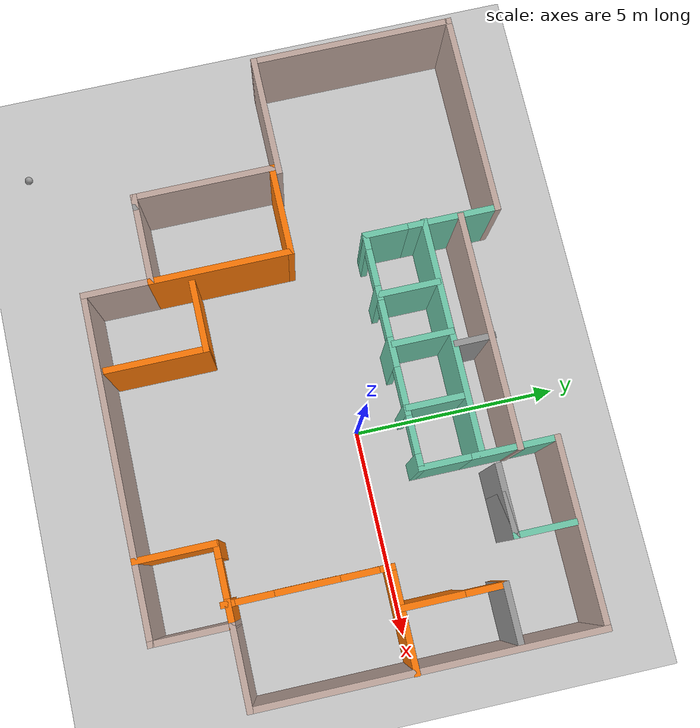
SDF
<sdf version="1.6">
 <world name="default">
  <model name="ground_plane">
   <static>1</static>
   <link name="link">
    <collision name="collision">
     <geometry><plane><normal>0 0 1</normal><size>100 100</size></plane></geometry>
     <surface>
      <contact><collide_bitmask>65535</collide_bitmask></contact>
      <friction><ode><mu>100</mu><mu2>50</mu2></ode></friction>
     </surface>
    </collision>
    <visual name="visual">
     <cast_shadows>0</cast_shadows>
     <geometry><plane><normal>0 0 1</normal><size>100 100</size></plane></geometry>
     <material>
      <script><uri>file://media/materials/scripts/gazebo.material</uri><name>Gazebo/Grey</name></script>
     </material>
    </visual>
   </link>
  </model>
  <model name="Building">
   <pose>-1.69632 -0.68623 0 0 -0 0</pose>
   <link name="Wall_0">
    <collision name="Wall_0_Collision">
     <geometry><box><size>8.25 0.15 2.5</size></box></geometry>
     <pose>0 0 1.25 0 -0 0</pose>
    </collision>
    <visual name="Wall_0_Visual">
     <pose>0 0 1.25 0 -0 0</pose>
     <geometry><box><size>8.25 0.15 2.5</size></box></geometry>
     <material>
      <script><uri>file://media/materials/scripts/gazebo.material</uri><name>Gazebo/Grey</name></script>
      <ambient>0.760784 0.662745 0.627451 1</ambient>
     </material>
     <meta><layer>0</layer></meta>
    </visual>
    <pose>1.4941 -4.975 0 0 -0 0</pose>
   </link>
   <link name="Wall_1">
    <collision name="Wall_1_Collision">
     <geometry><box><size>2 0.15 2.5</size></box></geometry>
     <pose>0 0 1.25 0 -0 0</pose>
    </collision>
    <visual name="Wall_1_Visual">
     <pose>0 0 1.25 0 -0 0</pose>
     <geometry><box><size>2 0.15 2.5</size></box></geometry>
     <material>
      <script><uri>file://media/materials/scripts/gazebo.material</uri><name>Gazebo/Grey</name></script>
      <ambient>0.760784 0.662745 0.627451 1</ambient>
     </material>
     <meta><layer>0</layer></meta>
    </visual>
    <pose>5.5441 -4.05 0 0 -0 1.5708</pose>
   </link>
   <link name="Wall_10">
    <collision name="Wall_10_Collision">
     <geometry><box><size>3 0.15 2.5</size></box></geometry>
     <pose>0 0 1.25 0 -0 0</pose>
    </collision>
    <visual name="Wall_10_Visual">
     <pose>0 0 1.25 0 -0 0</pose>
     <geometry><box><size>3 0.15 2.5</size></box></geometry>
     <material>
      <script><uri>file://media/materials/scripts/gazebo.material</uri><name>Gazebo/Grey</name></script>
      <ambient>0.760784 0.662745 0.627451 1</ambient>
     </material>
     <meta><layer>0</layer></meta>
    </visual>
    <pose>-5.9809 0.125 0 0 -0 0</pose>
   </link>
   <link name="Wall_15">
    <pose>4.6191 -3.125 0 0 -0 3.14159</pose>
    <visual name="Wall_15_Visual_0">
     <pose>-0.661107 0 1.25 0 -0 0</pose>
     <geometry><box><size>0.677786 0.15 2.5</size></box></geometry>
     <material>
      <script><uri>file://media/materials/scripts/gazebo.material</uri><name>Gazebo/Grey</name></script>
      <ambient>0.996078 0.47451 0.0196078 1</ambient>
     </material>
     <meta><layer>0</layer></meta>
    </visual>
    <collision name="Wall_15_Collision_0">
     <geometry><box><size>0.677786 0.15 2.5</size></box></geometry>
     <pose>-0.661107 0 1.25 0 -0 0</pose>
    </collision>
    <visual name="Wall_15_Visual_1">
     <pose>0.788893 0 1.25 0 -0 0</pose>
     <geometry><box><size>0.422214 0.15 2.5</size></box></geometry>
     <material>
      <script><uri>file://media/materials/scripts/gazebo.material</uri><name>Gazebo/Grey</name></script>
      <ambient>0.996078 0.47451 0.0196078 1</ambient>
     </material>
     <meta><layer>0</layer></meta>
    </visual>
    <collision name="Wall_15_Collision_1">
     <geometry><box><size>0.422214 0.15 2.5</size></box></geometry>
     <pose>0.788893 0 1.25 0 -0 0</pose>
    </collision>
    <visual name="Wall_15_Visual_2">
     <pose>0.127786 0 2.25 0 -0 0</pose>
     <geometry><box><size>0.9 0.15 0.5</size></box></geometry>
     <material>
      <script><uri>file://media/materials/scripts/gazebo.material</uri><name>Gazebo/Grey</name></script>
      <ambient>0.996078 0.47451 0.0196078 1</ambient>
     </material>
     <meta><layer>0</layer></meta>
    </visual>
    <collision name="Wall_15_Collision_2">
     <geometry><box><size>0.9 0.15 0.5</size></box></geometry>
     <pose>0.127786 0 2.25 0 -0 0</pose>
    </collision>
   </link>
   <link name="Wall_16">
    <collision name="Wall_16_Collision">
     <geometry><box><size>2 0.15 2.5</size></box></geometry>
     <pose>0 0 1.25 0 -0 0</pose>
    </collision>
    <visual name="Wall_16_Visual">
     <pose>0 0 1.25 0 -0 0</pose>
     <geometry><box><size>2 0.15 2.5</size></box></geometry>
     <material>
      <script><uri>file://media/materials/scripts/gazebo.material</uri><name>Gazebo/Grey</name></script>
      <ambient>0.996078 0.47451 0.0196078 1</ambient>
     </material>
     <meta><layer>0</layer></meta>
    </visual>
    <pose>3.6941 -4.05 0 0 0 -1.5708</pose>
   </link>
   <link name="Wall_18">
    <pose>5.0559 -1.30012 0 0 -0 1.5708</pose>
    <visual name="Wall_18_Visual_0">
     <pose>-1.833 0 1.25 0 -0 0</pose>
     <geometry><box><size>0.334005 0.15 2.5</size></box></geometry>
     <material>
      <script><uri>file://media/materials/scripts/gazebo.material</uri><name>Gazebo/Grey</name></script>
      <ambient>0.996078 0.47451 0.0196078 1</ambient>
     </material>
     <meta><layer>0</layer></meta>
    </visual>
    <collision name="Wall_18_Collision_0">
     <geometry><box><size>0.334005 0.15 2.5</size></box></geometry>
     <pose>-1.833 0 1.25 0 -0 0</pose>
    </collision>
    <visual name="Wall_18_Visual_1">
     <pose>-0.013204 0 1.25 0 -0 0</pose>
     <geometry><box><size>1.50558 0.15 2.5</size></box></geometry>
     <material>
      <script><uri>file://media/materials/scripts/gazebo.material</uri><name>Gazebo/Grey</name></script>
      <ambient>0.996078 0.47451 0.0196078 1</ambient>
     </material>
     <meta><layer>0</layer></meta>
    </visual>
    <collision name="Wall_18_Collision_1">
     <geometry><box><size>1.50558 0.15 2.5</size></box></geometry>
     <pose>-0.013204 0 1.25 0 -0 0</pose>
    </collision>
    <visual name="Wall_18_Visual_2">
     <pose>1.81979 0 1.25 0 -0 0</pose>
     <geometry><box><size>0.360412 0.15 2.5</size></box></geometry>
     <material>
      <script><uri>file://media/materials/scripts/gazebo.material</uri><name>Gazebo/Grey</name></script>
      <ambient>0.996078 0.47451 0.0196078 1</ambient>
     </material>
     <meta><layer>0</layer></meta>
    </visual>
    <collision name="Wall_18_Collision_2">
     <geometry><box><size>0.360412 0.15 2.5</size></box></geometry>
     <pose>1.81979 0 1.25 0 -0 0</pose>
    </collision>
    <visual name="Wall_18_Visual_3">
     <pose>-1.21599 0 2.25 0 -0 0</pose>
     <geometry><box><size>0.9 0.15 0.5</size></box></geometry>
     <material>
      <script><uri>file://media/materials/scripts/gazebo.material</uri><name>Gazebo/Grey</name></script>
      <ambient>0.996078 0.47451 0.0196078 1</ambient>
     </material>
     <meta><layer>0</layer></meta>
    </visual>
    <collision name="Wall_18_Collision_3">
     <geometry><box><size>0.9 0.15 0.5</size></box></geometry>
     <pose>-1.21599 0 2.25 0 -0 0</pose>
    </collision>
    <visual name="Wall_18_Visual_4">
     <pose>1.18959 0 2.25 0 -0 0</pose>
     <geometry><box><size>0.9 0.15 0.5</size></box></geometry>
     <material>
      <script><uri>file://media/materials/scripts/gazebo.material</uri><name>Gazebo/Grey</name></script>
      <ambient>0.996078 0.47451 0.0196078 1</ambient>
     </material>
     <meta><layer>0</layer></meta>
    </visual>
    <collision name="Wall_18_Collision_4">
     <geometry><box><size>0.9 0.15 0.5</size></box></geometry>
     <pose>1.18959 0 2.25 0 -0 0</pose>
    </collision>
   </link>
   <link name="Wall_19">
    <collision name="Wall_19_Collision">
     <geometry><box><size>2.5 0.15 2.5</size></box></geometry>
     <pose>0 0 1.25 0 -0 0</pose>
    </collision>
    <visual name="Wall_19_Visual">
     <pose>0 0 1.25 0 -0 0</pose>
     <geometry><box><size>2.5 0.15 2.5</size></box></geometry>
     <material>
      <script><uri>file://media/materials/scripts/gazebo.material</uri><name>Gazebo/Grey</name></script>
      <ambient>0.996078 0.47451 0.0196078 1</ambient>
     </material>
     <meta><layer>0</layer></meta>
    </visual>
    <pose>6.2309 0.624882 0 0 -0 0</pose>
   </link>
   <link name="Wall_2">
    <collision name="Wall_2_Collision">
     <geometry><box><size>2 0.15 2.5</size></box></geometry>
     <pose>0 0 1.25 0 -0 0</pose>
    </collision>
    <visual name="Wall_2_Visual">
     <pose>0 0 1.25 0 -0 0</pose>
     <geometry><box><size>2 0.15 2.5</size></box></geometry>
     <material>
      <script><uri>file://media/materials/scripts/gazebo.material</uri><name>Gazebo/Grey</name></script>
      <ambient>0.760784 0.662745 0.627451 1</ambient>
     </material>
     <meta><layer>0</layer></meta>
    </visual>
    <pose>6.4691 -3.125 0 0 -0 0</pose>
   </link>
   <link name="Wall_21">
    <pose>5.98112 1.83582 0 0 -0 1.5708</pose>
    <visual name="Wall_21_Visual_0">
     <pose>-0.504732 0 1.25 0 -0 0</pose>
     <geometry><box><size>1.49053 0.15 2.5</size></box></geometry>
     <material>
      <script><uri>file://media/materials/scripts/gazebo.material</uri><name>Gazebo/Grey</name></script>
      <ambient>0.996078 0.47451 0.0196078 1</ambient>
     </material>
     <meta><layer>0</layer></meta>
    </visual>
    <collision name="Wall_21_Collision_0">
     <geometry><box><size>1.49053 0.15 2.5</size></box></geometry>
     <pose>-0.504732 0 1.25 0 -0 0</pose>
    </collision>
    <visual name="Wall_21_Visual_1">
     <pose>1.19527 0 1.25 0 -0 0</pose>
     <geometry><box><size>0.109465 0.15 2.5</size></box></geometry>
     <material>
      <script><uri>file://media/materials/scripts/gazebo.material</uri><name>Gazebo/Grey</name></script>
      <ambient>0.996078 0.47451 0.0196078 1</ambient>
     </material>
     <meta><layer>0</layer></meta>
    </visual>
    <collision name="Wall_21_Collision_1">
     <geometry><box><size>0.109465 0.15 2.5</size></box></geometry>
     <pose>1.19527 0 1.25 0 -0 0</pose>
    </collision>
    <visual name="Wall_21_Visual_2">
     <pose>0.690535 0 2.25 0 -0 0</pose>
     <geometry><box><size>0.9 0.15 0.5</size></box></geometry>
     <material>
      <script><uri>file://media/materials/scripts/gazebo.material</uri><name>Gazebo/Grey</name></script>
      <ambient>0.996078 0.47451 0.0196078 1</ambient>
     </material>
     <meta><layer>0</layer></meta>
    </visual>
    <collision name="Wall_21_Collision_2">
     <geometry><box><size>0.9 0.15 0.5</size></box></geometry>
     <pose>0.690535 0 2.25 0 -0 0</pose>
    </collision>
   </link>
   <link name="Wall_22">
    <collision name="Wall_22_Collision">
     <geometry><box><size>1.5 0.15 2.5</size></box></geometry>
     <pose>0 0 1.25 0 -0 0</pose>
    </collision>
    <visual name="Wall_22_Visual">
     <pose>0 0 1.25 0 -0 0</pose>
     <geometry><box><size>1.5 0.15 2.5</size></box></geometry>
     <material>
      <script><uri>file://media/materials/scripts/gazebo.material</uri><name>Gazebo/Grey</name></script>
      <ambient>1 1 1 1</ambient>
     </material>
     <meta><layer>0</layer></meta>
    </visual>
    <pose>6.65612 3.01082 0 0 -0 0</pose>
   </link>
   <link name="Wall_25">
    <collision name="Wall_25_Collision">
     <geometry><box><size>1.75 0.15 2.5</size></box></geometry>
     <pose>0 0 1.25 0 -0 0</pose>
    </collision>
    <visual name="Wall_25_Visual">
     <pose>0 0 1.25 0 -0 0</pose>
     <geometry><box><size>1.75 0.15 2.5</size></box></geometry>
     <material>
      <script><uri>file://media/materials/scripts/gazebo.material</uri><name>Gazebo/Grey</name></script>
      <ambient>0.760784 0.662745 0.627451 1</ambient>
     </material>
     <meta><layer>0</layer></meta>
    </visual>
    <pose>-2.5559 -4.175 0 0 -0 1.5708</pose>
   </link>
   <link name="Wall_27">
    <collision name="Wall_27_Collision">
     <geometry><box><size>0.15 0.15 2.5</size></box></geometry>
     <pose>0 0 1.25 0 -0 0</pose>
    </collision>
    <visual name="Wall_27_Visual">
     <pose>0 0 1.25 0 -0 0</pose>
     <geometry><box><size>0.15 0.15 2.5</size></box></geometry>
     <material>
      <script><uri>file://media/materials/scripts/gazebo.material</uri><name>Gazebo/Grey</name></script>
      <ambient>1 1 1 1</ambient>
     </material>
     <meta><layer>0</layer></meta>
    </visual>
    <pose>-4.4059 -3.375 0 0 -0 0</pose>
   </link>
   <link name="Wall_28">
    <collision name="Wall_28_Collision">
     <geometry><box><size>0.15 0.15 2.5</size></box></geometry>
     <pose>0 0 1.25 0 -0 0</pose>
    </collision>
    <visual name="Wall_28_Visual">
     <pose>0 0 1.25 0 -0 0</pose>
     <geometry><box><size>0.15 0.15 2.5</size></box></geometry>
     <material>
      <script><uri>file://media/materials/scripts/gazebo.material</uri><name>Gazebo/Grey</name></script>
      <ambient>1 1 1 1</ambient>
     </material>
     <meta><layer>0</layer></meta>
    </visual>
    <pose>-4.4059 -3.375 0 0 -0 0</pose>
   </link>
   <link name="Wall_29">
    <collision name="Wall_29_Collision">
     <geometry><box><size>0.15 0.15 2.5</size></box></geometry>
     <pose>0 0 1.25 0 -0 0</pose>
    </collision>
    <visual name="Wall_29_Visual">
     <pose>0 0 1.25 0 -0 0</pose>
     <geometry><box><size>0.15 0.15 2.5</size></box></geometry>
     <material>
      <script><uri>file://media/materials/scripts/gazebo.material</uri><name>Gazebo/Grey</name></script>
      <ambient>1 1 1 1</ambient>
     </material>
     <meta><layer>0</layer></meta>
    </visual>
    <pose>-4.4059 -3.375 0 0 -0 0</pose>
   </link>
   <link name="Wall_3">
    <collision name="Wall_3_Collision">
     <geometry><box><size>8.25 0.15 2.5</size></box></geometry>
     <pose>0 0 1.25 0 -0 0</pose>
    </collision>
    <visual name="Wall_3_Visual">
     <pose>0 0 1.25 0 -0 0</pose>
     <geometry><box><size>8.25 0.15 2.5</size></box></geometry>
     <material>
      <script><uri>file://media/materials/scripts/gazebo.material</uri><name>Gazebo/Grey</name></script>
      <ambient>0.760784 0.662745 0.627451 1</ambient>
     </material>
     <meta><layer>0</layer></meta>
    </visual>
    <pose>7.3941 0.925 0 0 -0 1.5708</pose>
   </link>
   <link name="Wall_30">
    <collision name="Wall_30_Collision">
     <geometry><box><size>0.15 0.15 2.5</size></box></geometry>
     <pose>0 0 1.25 0 -0 0</pose>
    </collision>
    <visual name="Wall_30_Visual">
     <pose>0 0 1.25 0 -0 0</pose>
     <geometry><box><size>0.15 0.15 2.5</size></box></geometry>
     <material>
      <script><uri>file://media/materials/scripts/gazebo.material</uri><name>Gazebo/Grey</name></script>
      <ambient>1 1 1 1</ambient>
     </material>
     <meta><layer>0</layer></meta>
    </visual>
    <pose>-4.4059 -3.375 0 0 -0 0</pose>
   </link>
   <link name="Wall_33">
    <collision name="Wall_33_Collision">
     <geometry><box><size>2.25 0.15 2.5</size></box></geometry>
     <pose>0 0 1.25 0 -0 0</pose>
    </collision>
    <visual name="Wall_33_Visual">
     <pose>0 0 1.25 0 -0 0</pose>
     <geometry><box><size>2.25 0.15 2.5</size></box></geometry>
     <material>
      <script><uri>file://media/materials/scripts/gazebo.material</uri><name>Gazebo/Grey</name></script>
      <ambient>0.760784 0.662745 0.627451 1</ambient>
     </material>
     <meta><layer>0</layer></meta>
    </visual>
    <pose>-3.6059 -3.375 0 0 -0 3.14159</pose>
   </link>
   <link name="Wall_34">
    <collision name="Wall_34_Collision">
     <geometry><box><size>3.5 0.15 2.5</size></box></geometry>
     <pose>0 0 1.25 0 -0 0</pose>
    </collision>
    <visual name="Wall_34_Visual">
     <pose>0 0 1.25 0 -0 0</pose>
     <geometry><box><size>3.5 0.15 2.5</size></box></geometry>
     <material>
      <script><uri>file://media/materials/scripts/gazebo.material</uri><name>Gazebo/Grey</name></script>
      <ambient>0.760784 0.662745 0.627451 1</ambient>
     </material>
     <meta><layer>0</layer></meta>
    </visual>
    <pose>-4.6559 -1.7 0 0 -0 1.5708</pose>
   </link>
   <link name="Wall_39">
    <collision name="Wall_39_Collision">
     <geometry><box><size>3.5 0.15 2.5</size></box></geometry>
     <pose>0 0 1.25 0 -0 0</pose>
    </collision>
    <visual name="Wall_39_Visual">
     <pose>0 0 1.25 0 -0 0</pose>
     <geometry><box><size>3.5 0.15 2.5</size></box></geometry>
     <material>
      <script><uri>file://media/materials/scripts/gazebo.material</uri><name>Gazebo/Grey</name></script>
      <ambient>0.996078 0.47451 0.0196078 1</ambient>
     </material>
     <meta><layer>0</layer></meta>
    </visual>
    <pose>-2.5559 -1.7 0 0 -0 1.5708</pose>
   </link>
   <link name="Wall_4">
    <collision name="Wall_4_Collision">
     <geometry><box><size>4.5 0.15 2.5</size></box></geometry>
     <pose>0 0 1.25 0 -0 0</pose>
    </collision>
    <visual name="Wall_4_Visual">
     <pose>0 0 1.25 0 -0 0</pose>
     <geometry><box><size>4.5 0.15 2.5</size></box></geometry>
     <material>
      <script><uri>file://media/materials/scripts/gazebo.material</uri><name>Gazebo/Grey</name></script>
      <ambient>0.760784 0.662745 0.627451 1</ambient>
     </material>
     <meta><layer>0</layer></meta>
    </visual>
    <pose>5.2191 4.975 0 0 -0 3.14159</pose>
   </link>
   <link name="Wall_40">
    <collision name="Wall_40_Collision">
     <geometry><box><size>2.25 0.15 2.5</size></box></geometry>
     <pose>0 0 1.25 0 -0 0</pose>
    </collision>
    <visual name="Wall_40_Visual">
     <pose>0 0 1.25 0 -0 0</pose>
     <geometry><box><size>2.25 0.15 2.5</size></box></geometry>
     <material>
      <script><uri>file://media/materials/scripts/gazebo.material</uri><name>Gazebo/Grey</name></script>
      <ambient>0.996078 0.47451 0.0196078 1</ambient>
     </material>
     <meta><layer>0</layer></meta>
    </visual>
    <pose>-3.6059 -0.025 0 0 -0 3.14159</pose>
   </link>
   <link name="Wall_42">
    <collision name="Wall_42_Collision">
     <geometry><box><size>1.75 0.15 2.5</size></box></geometry>
     <pose>0 0 1.25 0 -0 0</pose>
    </collision>
    <visual name="Wall_42_Visual">
     <pose>0 0 1.25 0 -0 0</pose>
     <geometry><box><size>1.75 0.15 2.5</size></box></geometry>
     <material>
      <script><uri>file://media/materials/scripts/gazebo.material</uri><name>Gazebo/Grey</name></script>
      <ambient>0.996078 0.47451 0.0196078 1</ambient>
     </material>
     <meta><layer>0</layer></meta>
    </visual>
    <pose>-1.49964 -2.43868 0 0 -0 0</pose>
   </link>
   <link name="Wall_43">
    <collision name="Wall_43_Collision">
     <geometry><box><size>2.5 0.15 2.5</size></box></geometry>
     <pose>0 0 1.25 0 -0 0</pose>
    </collision>
    <visual name="Wall_43_Visual">
     <pose>0 0 1.25 0 -0 0</pose>
     <geometry><box><size>2.5 0.15 2.5</size></box></geometry>
     <material>
      <script><uri>file://media/materials/scripts/gazebo.material</uri><name>Gazebo/Grey</name></script>
      <ambient>0.996078 0.47451 0.0196078 1</ambient>
     </material>
     <meta><layer>0</layer></meta>
    </visual>
    <pose>-0.699636 -3.61368 0 0 0 -1.5708</pose>
   </link>
   <link name="Wall_45">
    <collision name="Wall_45_Collision">
     <geometry><box><size>1.25 0.15 2.5</size></box></geometry>
     <pose>0 0 1.25 0 -0 0</pose>
    </collision>
    <visual name="Wall_45_Visual">
     <pose>0 0 1.25 0 -0 0</pose>
     <geometry><box><size>1.25 0.15 2.5</size></box></geometry>
     <material>
      <script><uri>file://media/materials/scripts/gazebo.material</uri><name>Gazebo/Grey</name></script>
      <ambient>0.435294 0.796078 0.67451 1</ambient>
     </material>
     <meta><layer>0</layer></meta>
    </visual>
    <pose>-2.5559 2.325 0 0 0 -1.5708</pose>
   </link>
   <link name="Wall_46">
    <pose>0.244104 1.775 0 0 -0 0</pose>
    <visual name="Wall_46_Visual_0">
     <pose>-2.66153 0 1.25 0 -0 0</pose>
     <geometry><box><size>0.42695 0.15 2.5</size></box></geometry>
     <material>
      <script><uri>file://media/materials/scripts/gazebo.material</uri><name>Gazebo/Grey</name></script>
      <ambient>0.435294 0.796078 0.67451 1</ambient>
     </material>
     <meta><layer>0</layer></meta>
    </visual>
    <collision name="Wall_46_Collision_0">
     <geometry><box><size>0.42695 0.15 2.5</size></box></geometry>
     <pose>-2.66153 0 1.25 0 -0 0</pose>
    </collision>
    <visual name="Wall_46_Visual_1">
     <pose>-1.37352 0 1.25 0 -0 0</pose>
     <geometry><box><size>0.349053 0.15 2.5</size></box></geometry>
     <material>
      <script><uri>file://media/materials/scripts/gazebo.material</uri><name>Gazebo/Grey</name></script>
      <ambient>0.435294 0.796078 0.67451 1</ambient>
     </material>
     <meta><layer>0</layer></meta>
    </visual>
    <collision name="Wall_46_Collision_1">
     <geometry><box><size>0.349053 0.15 2.5</size></box></geometry>
     <pose>-1.37352 0 1.25 0 -0 0</pose>
    </collision>
    <visual name="Wall_46_Visual_2">
     <pose>0.060574 0 1.25 0 -0 0</pose>
     <geometry><box><size>0.719143 0.15 2.5</size></box></geometry>
     <material>
      <script><uri>file://media/materials/scripts/gazebo.material</uri><name>Gazebo/Grey</name></script>
      <ambient>0.435294 0.796078 0.67451 1</ambient>
     </material>
     <meta><layer>0</layer></meta>
    </visual>
    <collision name="Wall_46_Collision_2">
     <geometry><box><size>0.719143 0.15 2.5</size></box></geometry>
     <pose>0.060574 0 1.25 0 -0 0</pose>
    </collision>
    <visual name="Wall_46_Visual_3">
     <pose>1.44841 0 1.25 0 -0 0</pose>
     <geometry><box><size>0.25653 0.15 2.5</size></box></geometry>
     <material>
      <script><uri>file://media/materials/scripts/gazebo.material</uri><name>Gazebo/Grey</name></script>
      <ambient>0.435294 0.796078 0.67451 1</ambient>
     </material>
     <meta><layer>0</layer></meta>
    </visual>
    <collision name="Wall_46_Collision_3">
     <geometry><box><size>0.25653 0.15 2.5</size></box></geometry>
     <pose>1.44841 0 1.25 0 -0 0</pose>
    </collision>
    <visual name="Wall_46_Visual_4">
     <pose>2.67584 0 1.25 0 -0 0</pose>
     <geometry><box><size>0.398324 0.15 2.5</size></box></geometry>
     <material>
      <script><uri>file://media/materials/scripts/gazebo.material</uri><name>Gazebo/Grey</name></script>
      <ambient>0.435294 0.796078 0.67451 1</ambient>
     </material>
     <meta><layer>0</layer></meta>
    </visual>
    <collision name="Wall_46_Collision_4">
     <geometry><box><size>0.398324 0.15 2.5</size></box></geometry>
     <pose>2.67584 0 1.25 0 -0 0</pose>
    </collision>
    <visual name="Wall_46_Visual_5">
     <pose>-1.99805 0 2.25 0 -0 0</pose>
     <geometry><box><size>0.9 0.15 0.5</size></box></geometry>
     <material>
      <script><uri>file://media/materials/scripts/gazebo.material</uri><name>Gazebo/Grey</name></script>
      <ambient>0.435294 0.796078 0.67451 1</ambient>
     </material>
     <meta><layer>0</layer></meta>
    </visual>
    <collision name="Wall_46_Collision_5">
     <geometry><box><size>0.9 0.15 0.5</size></box></geometry>
     <pose>-1.99805 0 2.25 0 -0 0</pose>
    </collision>
    <visual name="Wall_46_Visual_6">
     <pose>-0.748997 0 2.25 0 -0 0</pose>
     <geometry><box><size>0.9 0.15 0.5</size></box></geometry>
     <material>
      <script><uri>file://media/materials/scripts/gazebo.material</uri><name>Gazebo/Grey</name></script>
      <ambient>0.435294 0.796078 0.67451 1</ambient>
     </material>
     <meta><layer>0</layer></meta>
    </visual>
    <collision name="Wall_46_Collision_6">
     <geometry><box><size>0.9 0.15 0.5</size></box></geometry>
     <pose>-0.748997 0 2.25 0 -0 0</pose>
    </collision>
    <visual name="Wall_46_Visual_7">
     <pose>0.870145 0 2.25 0 -0 0</pose>
     <geometry><box><size>0.9 0.15 0.5</size></box></geometry>
     <material>
      <script><uri>file://media/materials/scripts/gazebo.material</uri><name>Gazebo/Grey</name></script>
      <ambient>0.435294 0.796078 0.67451 1</ambient>
     </material>
     <meta><layer>0</layer></meta>
    </visual>
    <collision name="Wall_46_Collision_7">
     <geometry><box><size>0.9 0.15 0.5</size></box></geometry>
     <pose>0.870145 0 2.25 0 -0 0</pose>
    </collision>
    <visual name="Wall_46_Visual_8">
     <pose>2.02668 0 2.25 0 -0 0</pose>
     <geometry><box><size>0.9 0.15 0.5</size></box></geometry>
     <material>
      <script><uri>file://media/materials/scripts/gazebo.material</uri><name>Gazebo/Grey</name></script>
      <ambient>0.435294 0.796078 0.67451 1</ambient>
     </material>
     <meta><layer>0</layer></meta>
    </visual>
    <collision name="Wall_46_Collision_8">
     <geometry><box><size>0.9 0.15 0.5</size></box></geometry>
     <pose>2.02668 0 2.25 0 -0 0</pose>
    </collision>
   </link>
   <link name="Wall_47">
    <collision name="Wall_47_Collision">
     <geometry><box><size>1.25 0.15 2.5</size></box></geometry>
     <pose>0 0 1.25 0 -0 0</pose>
    </collision>
    <visual name="Wall_47_Visual">
     <pose>0 0 1.25 0 -0 0</pose>
     <geometry><box><size>1.25 0.15 2.5</size></box></geometry>
     <material>
      <script><uri>file://media/materials/scripts/gazebo.material</uri><name>Gazebo/Grey</name></script>
      <ambient>0.435294 0.796078 0.67451 1</ambient>
     </material>
     <meta><layer>0</layer></meta>
    </visual>
    <pose>3.0441 2.325 0 0 -0 1.5708</pose>
   </link>
   <link name="Wall_49">
    <collision name="Wall_49_Collision">
     <geometry><box><size>5.75 0.15 2.5</size></box></geometry>
     <pose>0 0 1.25 0 -0 0</pose>
    </collision>
    <visual name="Wall_49_Visual">
     <pose>0 0 1.25 0 -0 0</pose>
     <geometry><box><size>5.75 0.15 2.5</size></box></geometry>
     <material>
      <script><uri>file://media/materials/scripts/gazebo.material</uri><name>Gazebo/Grey</name></script>
      <ambient>0.760784 0.662745 0.627451 1</ambient>
     </material>
     <meta><layer>0</layer></meta>
    </visual>
    <pose>0.269058 4.08415 0 0 -0 0</pose>
   </link>
   <link name="Wall_5">
    <collision name="Wall_5_Collision">
     <geometry><box><size>2.25 0.15 2.5</size></box></geometry>
     <pose>0 0 1.25 0 -0 0</pose>
    </collision>
    <visual name="Wall_5_Visual">
     <pose>0 0 1.25 0 -0 0</pose>
     <geometry><box><size>2.25 0.15 2.5</size></box></geometry>
     <material>
      <script><uri>file://media/materials/scripts/gazebo.material</uri><name>Gazebo/Grey</name></script>
      <ambient>0.435294 0.796078 0.67451 1</ambient>
     </material>
     <meta><layer>0</layer></meta>
    </visual>
    <pose>3.0441 3.925 0 0 0 -1.5708</pose>
   </link>
   <link name="Wall_53">
    <collision name="Wall_53_Collision">
     <geometry><box><size>5.75 0.15 2.5</size></box></geometry>
     <pose>0 0 1.25 0 -0 0</pose>
    </collision>
    <visual name="Wall_53_Visual">
     <pose>0 0 1.25 0 -0 0</pose>
     <geometry><box><size>5.75 0.15 2.5</size></box></geometry>
     <material>
      <script><uri>file://media/materials/scripts/gazebo.material</uri><name>Gazebo/Grey</name></script>
      <ambient>0.435294 0.796078 0.67451 1</ambient>
     </material>
     <meta><layer>0</layer></meta>
    </visual>
    <pose>0.222797 3.20519 0 0 -0 0</pose>
   </link>
   <link name="Wall_58">
    <collision name="Wall_58_Collision">
     <geometry><box><size>1 0.15 2.5</size></box></geometry>
     <pose>0 0 1.25 0 -0 0</pose>
    </collision>
    <visual name="Wall_58_Visual">
     <pose>0 0 1.25 0 -0 0</pose>
     <geometry><box><size>1 0.15 2.5</size></box></geometry>
     <material>
      <script><uri>file://media/materials/scripts/gazebo.material</uri><name>Gazebo/Grey</name></script>
      <ambient>1 1 1 1</ambient>
     </material>
     <meta><layer>0</layer></meta>
    </visual>
    <pose>0.425617 3.67936 0 0 0 -1.5708</pose>
   </link>
   <link name="Wall_65">
    <collision name="Wall_65_Collision">
     <geometry><box><size>1.5 0.15 2.5</size></box></geometry>
     <pose>0 0 1.25 0 -0 0</pose>
    </collision>
    <visual name="Wall_65_Visual">
     <pose>0 0 1.25 0 -0 0</pose>
     <geometry><box><size>1.5 0.15 2.5</size></box></geometry>
     <material>
      <script><uri>file://media/materials/scripts/gazebo.material</uri><name>Gazebo/Grey</name></script>
      <ambient>0.435294 0.796078 0.67451 1</ambient>
     </material>
     <meta><layer>0</layer></meta>
    </visual>
    <pose>-1.09526 2.48642 0 0 0 -1.5708</pose>
   </link>
   <link name="Wall_67">
    <collision name="Wall_67_Collision">
     <geometry><box><size>1.5 0.15 2.5</size></box></geometry>
     <pose>0 0 1.25 0 -0 0</pose>
    </collision>
    <visual name="Wall_67_Visual">
     <pose>0 0 1.25 0 -0 0</pose>
     <geometry><box><size>1.5 0.15 2.5</size></box></geometry>
     <material>
      <script><uri>file://media/materials/scripts/gazebo.material</uri><name>Gazebo/Grey</name></script>
      <ambient>0.435294 0.796078 0.67451 1</ambient>
     </material>
     <meta><layer>0</layer></meta>
    </visual>
    <pose>0.121442 2.51684 0 0 0 -1.5708</pose>
   </link>
   <link name="Wall_69">
    <collision name="Wall_69_Collision">
     <geometry><box><size>1.5 0.15 2.5</size></box></geometry>
     <pose>0 0 1.25 0 -0 0</pose>
    </collision>
    <visual name="Wall_69_Visual">
     <pose>0 0 1.25 0 -0 0</pose>
     <geometry><box><size>1.5 0.15 2.5</size></box></geometry>
     <material>
      <script><uri>file://media/materials/scripts/gazebo.material</uri><name>Gazebo/Grey</name></script>
      <ambient>0.435294 0.796078 0.67451 1</ambient>
     </material>
     <meta><layer>0</layer></meta>
    </visual>
    <pose>1.64232 2.48642 0 0 0 -1.5708</pose>
   </link>
   <link name="Wall_7">
    <collision name="Wall_7_Collision">
     <geometry><box><size>2.25 0.15 2.5</size></box></geometry>
     <pose>0 0 1.25 0 -0 0</pose>
    </collision>
    <visual name="Wall_7_Visual">
     <pose>0 0 1.25 0 -0 0</pose>
     <geometry><box><size>2.25 0.15 2.5</size></box></geometry>
     <material>
      <script><uri>file://media/materials/scripts/gazebo.material</uri><name>Gazebo/Grey</name></script>
      <ambient>0.435294 0.796078 0.67451 1</ambient>
     </material>
     <meta><layer>0</layer></meta>
    </visual>
    <pose>-2.5559 3.925 0 0 -0 1.5708</pose>
   </link>
   <link name="Wall_71">
    <pose>4.18105 3.49784 0 0 -0 0</pose>
    <visual name="Wall_71_Visual_0">
     <pose>0 0 1.25 0 -0 0</pose>
     <geometry><box><size>1.75 0.15 2.5</size></box></geometry>
     <material>
      <script><uri>file://media/materials/scripts/gazebo.material</uri><name>Gazebo/Grey</name></script>
      <ambient>1 1 1 1</ambient>
     </material>
     <meta><layer>0</layer></meta>
    </visual>
    <collision name="Wall_71_Collision_0">
     <geometry><box><size>1.75 0.15 2.5</size></box></geometry>
     <pose>0 0 1.25 0 -0 0</pose>
    </collision>
    <visual name="Wall_71_Visual_1">
     <pose>0.331892 0 1.25 0 -0 0</pose>
     <geometry><box><size>1.08622 0.15 2.5</size></box></geometry>
     <material>
      <script><uri>file://media/materials/scripts/gazebo.material</uri><name>Gazebo/Grey</name></script>
      <ambient>1 1 1 1</ambient>
     </material>
     <meta><layer>0</layer></meta>
    </visual>
    <collision name="Wall_71_Collision_1">
     <geometry><box><size>1.08622 0.15 2.5</size></box></geometry>
     <pose>0.331892 0 1.25 0 -0 0</pose>
    </collision>
   </link>
   <link name="Wall_72">
    <collision name="Wall_72_Collision">
     <geometry><box><size>1.5 0.15 2.5</size></box></geometry>
     <pose>0 0 1.25 0 -0 0</pose>
    </collision>
    <visual name="Wall_72_Visual">
     <pose>0 0 1.25 0 -0 0</pose>
     <geometry><box><size>1.5 0.15 2.5</size></box></geometry>
     <material>
      <script><uri>file://media/materials/scripts/gazebo.material</uri><name>Gazebo/Grey</name></script>
      <ambient>0.435294 0.796078 0.67451 1</ambient>
     </material>
     <meta><layer>0</layer></meta>
    </visual>
    <pose>4.98105 4.17284 0 0 -0 1.5708</pose>
   </link>
   <link name="Wall_8">
    <collision name="Wall_8_Collision">
     <geometry><box><size>5 0.15 2.5</size></box></geometry>
     <pose>0 0 1.25 0 -0 0</pose>
    </collision>
    <visual name="Wall_8_Visual">
     <pose>0 0 1.25 0 -0 0</pose>
     <geometry><box><size>5 0.15 2.5</size></box></geometry>
     <material>
      <script><uri>file://media/materials/scripts/gazebo.material</uri><name>Gazebo/Grey</name></script>
      <ambient>0.760784 0.662745 0.627451 1</ambient>
     </material>
     <meta><layer>0</layer></meta>
    </visual>
    <pose>-4.9809 4.975 0 0 -0 3.14159</pose>
   </link>
   <link name="Wall_9">
    <collision name="Wall_9_Collision">
     <geometry><box><size>5 0.15 2.5</size></box></geometry>
     <pose>0 0 1.25 0 -0 0</pose>
    </collision>
    <visual name="Wall_9_Visual">
     <pose>0 0 1.25 0 -0 0</pose>
     <geometry><box><size>5 0.15 2.5</size></box></geometry>
     <material>
      <script><uri>file://media/materials/scripts/gazebo.material</uri><name>Gazebo/Grey</name></script>
      <ambient>0.760784 0.662745 0.627451 1</ambient>
     </material>
     <meta><layer>0</layer></meta>
    </visual>
    <pose>-7.4059 2.55 0 0 0 -1.5708</pose>
   </link>
   <static>1</static>
  </model>
  <model name="my_ball">
   <link name="link_0">
    <inertial>
     <mass>1</mass>
     <inertia><ixx>0.1</ixx><ixy>0</ixy><ixz>0</ixz><iyy>0.1</iyy><iyz>0</iyz><izz>0.1</izz></inertia>
    </inertial>
    <visual name="visual">
     <geometry><sphere><radius>0.1</radius></sphere></geometry>
     <material>
      <lighting>1</lighting>
      <script><uri>file://media/materials/scripts/gazebo.material</uri><name>Gazebo/Grey</name></script>
      <shader type="pixel"><normal_map>__default__</normal_map></shader>
      <ambient>1 1 1 1</ambient>
      <diffuse>1 1 1 1</diffuse>
      <specular>1 1 1 1</specular>
      <emissive>1 1 1 1</emissive>
     </material>
    </visual>
    <collision name="collision">
     <geometry><sphere><radius>0.1</radius></sphere></geometry>
     <surface>
      <friction>
       <ode><mu>1</mu><mu2>1</mu2><fdir1>0 0 0</fdir1><slip1>0</slip1><slip2>0</slip2></ode>
       <torsional>
        <coefficient>1</coefficient>
        <patch_radius>0</patch_radius>
        <surface_radius>0</surface_radius>
        <use_patch_radius>1</use_patch_radius>
        <ode><slip>0</slip></ode>
       </torsional>
      </friction>
      <bounce><restitution_coefficient>0</restitution_coefficient><threshold>1e+06</threshold></bounce>
      <contact>
       <collide_without_contact>0</collide_without_contact>
       <collide_without_contact_bitmask>1</collide_without_contact_bitmask>
       <collide_bitmask>1</collide_bitmask>
       <ode>
        <soft_cfm>0</soft_cfm>
        <soft_erp>0.2</soft_erp>
        <kp>1e+13</kp>
        <kd>1</kd>
        <max_vel>0.01</max_vel>
        <min_depth>0</min_depth>
       </ode>
       <bullet>
        <split_impulse>1</split_impulse>
        <split_impulse_penetration_threshold>-0.01</split_impulse_penetration_threshold>
        <soft_cfm>0</soft_cfm>
        <soft_erp>0.2</soft_erp>
        <kp>1e+13</kp>
        <kd>1</kd>
       </bullet>
      </contact>
     </surface>
    </collision>
   </link>
   <static>0</static>
   <pose>-8.07451 -6.7364 0.5 0 -0 0</pose>
  </model>
 </world>
</sdf>
